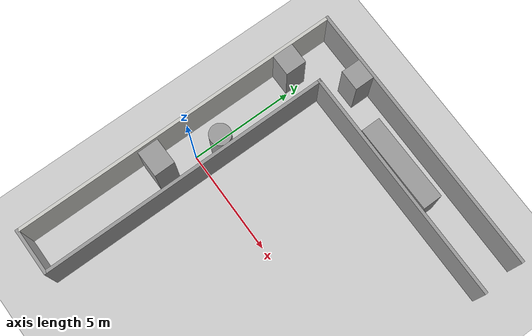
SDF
<sdf version="1.6">
 <world name="default">
  <light name="sun" type="directional">
   <pose>0 0 10 0 -0 0</pose>
   <diffuse>0.8 0.8 0.8 1</diffuse>
   <specular>0.2 0.2 0.2 1</specular>
   <attenuation>
    <range>1000</range>
    <constant>0.9</constant>
    <linear>0.01</linear>
    <quadratic>0.001</quadratic>
   </attenuation>
   <direction>-0.5 0.1 -0.9</direction>
  </light>
  <model name="ground_plane">
   <static>1</static>
   <link name="link">
    <collision name="collision">
     <geometry><plane><normal>0 0 1</normal><size>100 100</size></plane></geometry>
     <surface>
      <contact><collide_bitmask>65535</collide_bitmask></contact>
      <friction><ode><mu>100</mu><mu2>50</mu2></ode></friction>
     </surface>
    </collision>
    <visual name="visual">
     <cast_shadows>0</cast_shadows>
     <geometry><plane><normal>0 0 1</normal><size>100 100</size></plane></geometry>
     <material>
      <script><uri>file://media/materials/scripts/gazebo.material</uri><name>Gazebo/Grey</name></script>
     </material>
    </visual>
   </link>
  </model>
  <gravity>0 0 -9.8</gravity>
  <magnetic_field>6e-06 2.3e-05 -4.2e-05</magnetic_field>
  <atmosphere type="adiabatic"/>
  <physics name="default_physics" default="0" type="ode">
   <max_step_size>0.001</max_step_size>
   <real_time_factor>1</real_time_factor>
   <real_time_update_rate>1000</real_time_update_rate>
  </physics>
  <scene><ambient>0.4 0.4 0.4 1</ambient><background>0.7 0.7 0.7 1</background><shadows>1</shadows></scene>
  <spherical_coordinates>
   <surface_model>EARTH_WGS84</surface_model>
   <latitude_deg>0</latitude_deg>
   <longitude_deg>0</longitude_deg>
   <elevation>0</elevation>
   <heading_deg>0</heading_deg>
  </spherical_coordinates>
  <model name="wall_0">
   <pose>5.45588 0.03316 0 0 -0 0</pose>
   <link name="Wall_10">
    <collision name="Wall_10_Collision">
     <geometry><box><size>13.25 0.15 2.5</size></box></geometry>
     <pose>0 0 1.25 0 -0 0</pose>
    </collision>
    <visual name="Wall_10_Visual">
     <pose>0 0 1.25 0 -0 0</pose>
     <geometry><box><size>13.25 0.15 2.5</size></box></geometry>
     <material>
      <script><uri>file://media/materials/scripts/gazebo.material</uri><name>Gazebo/Grey</name></script>
      <ambient>1 1 1 1</ambient>
     </material>
     <meta><layer>0</layer></meta>
    </visual>
    <pose>-0.05 7.925 0 0 -0 0</pose>
   </link>
   <link name="Wall_12">
    <collision name="Wall_12_Collision">
     <geometry><box><size>11.25 0.15 2.5</size></box></geometry>
     <pose>0 0 1.25 0 -0 0</pose>
    </collision>
    <visual name="Wall_12_Visual">
     <pose>0 0 1.25 0 -0 0</pose>
     <geometry><box><size>11.25 0.15 2.5</size></box></geometry>
     <material>
      <script><uri>file://media/materials/scripts/gazebo.material</uri><name>Gazebo/Grey</name></script>
      <ambient>1 1 1 1</ambient>
     </material>
     <meta><layer>0</layer></meta>
    </visual>
    <pose>1.05 5.925 0 0 -0 0</pose>
   </link>
   <link name="Wall_4">
    <collision name="Wall_4_Collision">
     <geometry><box><size>16 0.15 2.5</size></box></geometry>
     <pose>0 0 1.25 0 -0 0</pose>
    </collision>
    <visual name="Wall_4_Visual">
     <pose>0 0 1.25 0 -0 0</pose>
     <geometry><box><size>16 0.15 2.5</size></box></geometry>
     <material>
      <script><uri>file://media/materials/scripts/gazebo.material</uri><name>Gazebo/CeilingTiled</name></script>
      <ambient>1 1 1 1</ambient>
     </material>
     <meta><layer>0</layer></meta>
    </visual>
    <pose>-6.6 -0 0 0 -0 1.5708</pose>
   </link>
   <link name="Wall_7">
    <collision name="Wall_7_Collision">
     <geometry><box><size>2.25 0.15 2.5</size></box></geometry>
     <pose>0 0 1.25 0 -0 0</pose>
    </collision>
    <visual name="Wall_7_Visual">
     <pose>0 0 1.25 0 -0 0</pose>
     <geometry><box><size>2.25 0.15 2.5</size></box></geometry>
     <material>
      <script><uri>file://media/materials/scripts/gazebo.material</uri><name>Gazebo/Grey</name></script>
      <ambient>1 1 1 1</ambient>
     </material>
     <meta><layer>0</layer></meta>
    </visual>
    <pose>-5.55 -7.925 0 0 -0 0</pose>
   </link>
   <link name="Wall_8">
    <collision name="Wall_8_Collision">
     <geometry><box><size>14 0.15 2.5</size></box></geometry>
     <pose>0 0 1.25 0 -0 0</pose>
    </collision>
    <visual name="Wall_8_Visual">
     <pose>0 0 1.25 0 -0 0</pose>
     <geometry><box><size>14 0.15 2.5</size></box></geometry>
     <material>
      <script><uri>file://media/materials/scripts/gazebo.material</uri><name>Gazebo/Grey</name></script>
      <ambient>1 1 1 1</ambient>
     </material>
     <meta><layer>0</layer></meta>
    </visual>
    <pose>-4.5 -1 0 0 -0 1.5708</pose>
   </link>
   <static>1</static>
  </model>
  <model name="unit_box_clone_1">
   <link name="link">
    <inertial>
     <mass>1</mass>
     <inertia>
      <ixx>0.166667</ixx>
      <ixy>0</ixy>
      <ixz>0</ixz>
      <iyy>0.166667</iyy>
      <iyz>0</iyz>
      <izz>0.166667</izz>
     </inertia>
    </inertial>
    <visual name="visual">
     <geometry><box><size>1 0.925956 2.53986</size></box></geometry>
     <material>
      <script><name>Gazebo/Grey</name><uri>file://media/materials/scripts/gazebo.material</uri></script>
      <shader type="pixel"/>
     </material>
    </visual>
    <collision name="collision">
     <geometry><box><size>1 0.925956 2.53986</size></box></geometry>
     <surface>
      <friction>
       <ode><mu>1</mu><mu2>1</mu2><fdir1>0 0 0</fdir1><slip1>0</slip1><slip2>0</slip2></ode>
       <torsional>
        <coefficient>1</coefficient>
        <patch_radius>0</patch_radius>
        <surface_radius>0</surface_radius>
        <use_patch_radius>1</use_patch_radius>
        <ode><slip>0</slip></ode>
       </torsional>
      </friction>
      <bounce><restitution_coefficient>0</restitution_coefficient><threshold>1e+06</threshold></bounce>
      <contact>
       <collide_without_contact>0</collide_without_contact>
       <collide_without_contact_bitmask>1</collide_without_contact_bitmask>
       <collide_bitmask>1</collide_bitmask>
       <ode>
        <soft_cfm>0</soft_cfm>
        <soft_erp>0.2</soft_erp>
        <kp>1e+13</kp>
        <kd>1</kd>
        <max_vel>0.01</max_vel>
        <min_depth>0</min_depth>
       </ode>
       <bullet>
        <split_impulse>1</split_impulse>
        <split_impulse_penetration_threshold>-0.01</split_impulse_penetration_threshold>
        <soft_cfm>0</soft_cfm>
        <soft_erp>0.2</soft_erp>
        <kp>1e+13</kp>
        <kd>1</kd>
       </bullet>
      </contact>
     </surface>
    </collision>
   </link>
   <static>1</static>
   <pose>1.70344 7.42018 1.26993 0 -0 1e-06</pose>
  </model>
  <model name="unit_cylinder">
   <link name="link">
    <inertial>
     <mass>1</mass>
     <inertia><ixx>0.145833</ixx><ixy>0</ixy><ixz>0</ixz><iyy>0.145833</iyy><iyz>0</iyz><izz>0.125</izz></inertia>
    </inertial>
    <visual name="visual">
     <geometry><cylinder><radius>0.5</radius><length>2.44438</length></cylinder></geometry>
     <material>
      <script><name>Gazebo/Grey</name><uri>file://media/materials/scripts/gazebo.material</uri></script>
      <shader type="pixel"/>
     </material>
    </visual>
    <collision name="collision">
     <geometry><cylinder><radius>0.5</radius><length>2.44438</length></cylinder></geometry>
     <surface>
      <friction>
       <ode><mu>1</mu><mu2>1</mu2><fdir1>0 0 0</fdir1><slip1>0</slip1><slip2>0</slip2></ode>
       <torsional>
        <coefficient>1</coefficient>
        <patch_radius>0</patch_radius>
        <surface_radius>0</surface_radius>
        <use_patch_radius>1</use_patch_radius>
        <ode><slip>0</slip></ode>
       </torsional>
      </friction>
      <bounce><restitution_coefficient>0</restitution_coefficient><threshold>1e+06</threshold></bounce>
      <contact>
       <collide_without_contact>0</collide_without_contact>
       <collide_without_contact_bitmask>1</collide_without_contact_bitmask>
       <collide_bitmask>1</collide_bitmask>
       <ode>
        <soft_cfm>0</soft_cfm>
        <soft_erp>0.2</soft_erp>
        <kp>1e+13</kp>
        <kd>1</kd>
        <max_vel>0.01</max_vel>
        <min_depth>0</min_depth>
       </ode>
       <bullet>
        <split_impulse>1</split_impulse>
        <split_impulse_penetration_threshold>-0.01</split_impulse_penetration_threshold>
        <soft_cfm>0</soft_cfm>
        <soft_erp>0.2</soft_erp>
        <kp>1e+13</kp>
        <kd>1</kd>
       </bullet>
      </contact>
     </surface>
    </collision>
   </link>
   <static>1</static>
   <pose>0.380854 1.17504 1.22219 0 0 -9e-06</pose>
  </model>
  <model name="unit_box_clone_1_clone">
   <link name="link">
    <inertial>
     <mass>1</mass>
     <inertia>
      <ixx>0.166667</ixx>
      <ixy>0</ixy>
      <ixz>0</ixz>
      <iyy>0.166667</iyy>
      <iyz>0</iyz>
      <izz>0.166667</izz>
     </inertia>
    </inertial>
    <visual name="visual">
     <geometry><box><size>4.15978 0.915182 2.53986</size></box></geometry>
     <material>
      <script><name>Gazebo/Grey</name><uri>file://media/materials/scripts/gazebo.material</uri></script>
      <shader type="pixel"/>
     </material>
    </visual>
    <collision name="collision">
     <geometry><box><size>4.15978 0.915182 2.53986</size></box></geometry>
     <surface>
      <friction>
       <ode><mu>1</mu><mu2>1</mu2><fdir1>0 0 0</fdir1><slip1>0</slip1><slip2>0</slip2></ode>
       <torsional>
        <coefficient>1</coefficient>
        <patch_radius>0</patch_radius>
        <surface_radius>0</surface_radius>
        <use_patch_radius>1</use_patch_radius>
        <ode><slip>0</slip></ode>
       </torsional>
      </friction>
      <bounce><restitution_coefficient>0</restitution_coefficient><threshold>1e+06</threshold></bounce>
      <contact>
       <collide_without_contact>0</collide_without_contact>
       <collide_without_contact_bitmask>1</collide_without_contact_bitmask>
       <collide_bitmask>1</collide_bitmask>
       <ode>
        <soft_cfm>0</soft_cfm>
        <soft_erp>0.2</soft_erp>
        <kp>1e+13</kp>
        <kd>1</kd>
        <max_vel>0.01</max_vel>
        <min_depth>0</min_depth>
       </ode>
       <bullet>
        <split_impulse>1</split_impulse>
        <split_impulse_penetration_threshold>-0.01</split_impulse_penetration_threshold>
        <soft_cfm>0</soft_cfm>
        <soft_erp>0.2</soft_erp>
        <kp>1e+13</kp>
        <kd>1</kd>
       </bullet>
      </contact>
     </surface>
    </collision>
   </link>
   <static>1</static>
   <pose>5.85168 6.51836 1.26971 1e-06 0.000108 0.007188</pose>
  </model>
  <model name="unit_box_clone_0">
   <link name="link">
    <inertial>
     <mass>1</mass>
     <inertia>
      <ixx>0.166667</ixx>
      <ixy>0</ixy>
      <ixz>0</ixz>
      <iyy>0.166667</iyy>
      <iyz>0</iyz>
      <izz>0.166667</izz>
     </inertia>
    </inertial>
    <visual name="visual">
     <geometry><box><size>1 1 2.53986</size></box></geometry>
     <material>
      <script><name>Gazebo/Grey</name><uri>file://media/materials/scripts/gazebo.material</uri></script>
      <shader type="pixel"/>
     </material>
    </visual>
    <collision name="collision">
     <geometry><box><size>1 1 2.53986</size></box></geometry>
     <surface>
      <friction>
       <ode><mu>1</mu><mu2>1</mu2><fdir1>0 0 0</fdir1><slip1>0</slip1><slip2>0</slip2></ode>
       <torsional>
        <coefficient>1</coefficient>
        <patch_radius>0</patch_radius>
        <surface_radius>0</surface_radius>
        <use_patch_radius>1</use_patch_radius>
        <ode><slip>0</slip></ode>
       </torsional>
      </friction>
      <bounce><restitution_coefficient>0</restitution_coefficient><threshold>1e+06</threshold></bounce>
      <contact>
       <collide_without_contact>0</collide_without_contact>
       <collide_without_contact_bitmask>1</collide_without_contact_bitmask>
       <collide_bitmask>1</collide_bitmask>
       <ode>
        <soft_cfm>0</soft_cfm>
        <soft_erp>0.2</soft_erp>
        <kp>1e+13</kp>
        <kd>1</kd>
        <max_vel>0.01</max_vel>
        <min_depth>0</min_depth>
       </ode>
       <bullet>
        <split_impulse>1</split_impulse>
        <split_impulse_penetration_threshold>-0.01</split_impulse_penetration_threshold>
        <soft_cfm>0</soft_cfm>
        <soft_erp>0.2</soft_erp>
        <kp>1e+13</kp>
        <kd>1</kd>
       </bullet>
      </contact>
     </surface>
    </collision>
   </link>
   <static>1</static>
   <pose>-0.567624 5.48487 1.26993 -0 -3e-06 -0.002228</pose>
  </model>
  <model name="unit_box_clone">
   <link name="link">
    <inertial>
     <mass>1</mass>
     <inertia>
      <ixx>0.166667</ixx>
      <ixy>0</ixy>
      <ixz>0</ixz>
      <iyy>0.166667</iyy>
      <iyz>0</iyz>
      <izz>0.166667</izz>
     </inertia>
    </inertial>
    <visual name="visual">
     <geometry><box><size>1.25648 1 2.53986</size></box></geometry>
     <material>
      <script><name>Gazebo/Grey</name><uri>file://media/materials/scripts/gazebo.material</uri></script>
      <shader type="pixel"/>
     </material>
    </visual>
    <collision name="collision">
     <geometry><box><size>1.25648 1 2.53986</size></box></geometry>
     <surface>
      <friction>
       <ode><mu>1</mu><mu2>1</mu2><fdir1>0 0 0</fdir1><slip1>0</slip1><slip2>0</slip2></ode>
       <torsional>
        <coefficient>1</coefficient>
        <patch_radius>0</patch_radius>
        <surface_radius>0</surface_radius>
        <use_patch_radius>1</use_patch_radius>
        <ode><slip>0</slip></ode>
       </torsional>
      </friction>
      <bounce><restitution_coefficient>0</restitution_coefficient><threshold>1e+06</threshold></bounce>
      <contact>
       <collide_without_contact>0</collide_without_contact>
       <collide_without_contact_bitmask>1</collide_without_contact_bitmask>
       <collide_bitmask>1</collide_bitmask>
       <ode>
        <soft_cfm>0</soft_cfm>
        <soft_erp>0.2</soft_erp>
        <kp>1e+13</kp>
        <kd>1</kd>
        <max_vel>0.01</max_vel>
        <min_depth>0</min_depth>
       </ode>
       <bullet>
        <split_impulse>1</split_impulse>
        <split_impulse_penetration_threshold>-0.01</split_impulse_penetration_threshold>
        <soft_cfm>0</soft_cfm>
        <soft_erp>0.2</soft_erp>
        <kp>1e+13</kp>
        <kd>1</kd>
       </bullet>
      </contact>
     </surface>
    </collision>
   </link>
   <static>1</static>
   <pose>-0.341459 -1.56797 1.26993 1e-06 -2e-06 0.010425</pose>
  </model>
 </world>
</sdf>
